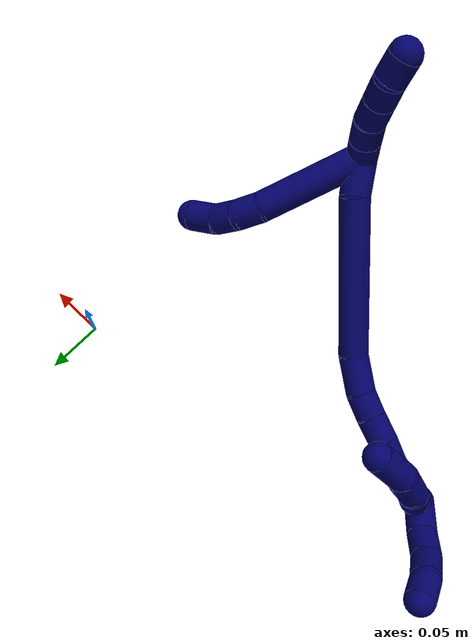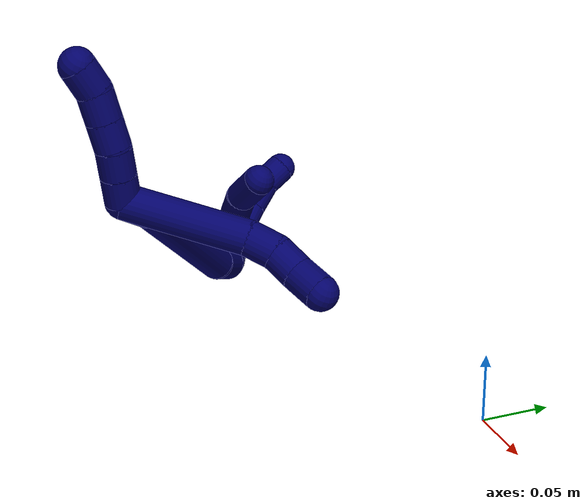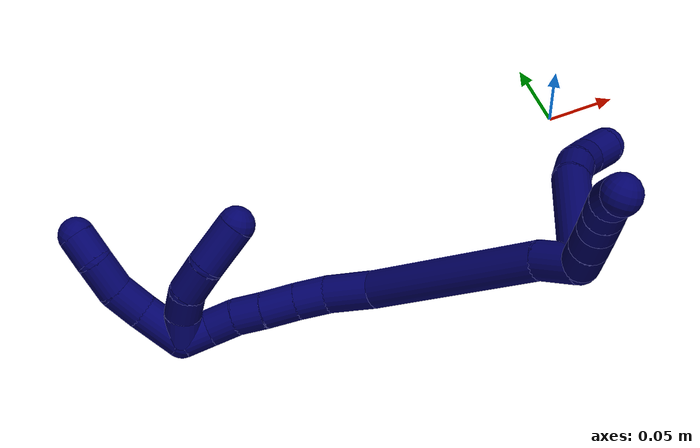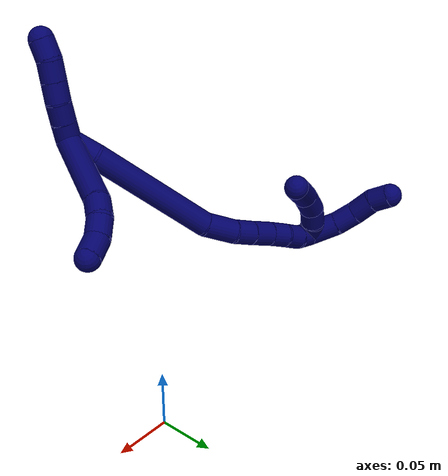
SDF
<sdf version="1.7">
 <world name="default">
  <model name="7">
   <static>0</static>
   <link name="7">
    <collision name="collision-cylinder-e_1_2_8">
     <pose>0.007698 0.041253 0.009433 -1.346 0.179933 -0.143574</pose>
     <geometry><cylinder><radius>0.0125</radius><length>0.086025</length></cylinder></geometry>
     <surface>
      <friction><ode><mu>1.16</mu><mu2>1.16</mu2><slip1>0</slip1><slip2>0</slip2></ode></friction>
      <contact><ode><kp>1e+06</kp><kd>1</kd><max_vel>0</max_vel><min_depth>0.001</min_depth></ode></contact>
     </surface>
    </collision>
    <visual name="visual-cylinder-e_1_2_8">
     <pose>0.007698 0.041253 0.009433 -1.346 0.179933 -0.143574</pose>
     <geometry><cylinder><radius>0.0125</radius><length>0.086025</length></cylinder></geometry>
     <material><ambient>0.003922 0 0.403922 1</ambient></material>
    </visual>
    <collision name="collision-cylinder-e_2_8_9">
     <pose>0.019554 0.09202 0.020574 -1.39313 0.406315 -0.341258</pose>
     <geometry><cylinder><radius>0.0125</radius><length>0.021045</length></cylinder></geometry>
     <surface>
      <friction><ode><mu>1.16</mu><mu2>1.16</mu2><slip1>0</slip1><slip2>0</slip2></ode></friction>
      <contact><ode><kp>1e+06</kp><kd>1</kd><max_vel>0</max_vel><min_depth>0.001</min_depth></ode></contact>
     </surface>
    </collision>
    <visual name="visual-cylinder-e_2_8_9">
     <pose>0.019554 0.09202 0.020574 -1.39313 0.406315 -0.341258</pose>
     <geometry><cylinder><radius>0.0125</radius><length>0.021045</length></cylinder></geometry>
     <material><ambient>0.003922 0 0.403922 1</ambient></material>
    </visual>
    <collision name="collision-cylinder-e_3_9_10">
     <pose>0.030014 0.109417 0.022232 -1.57725 0.674267 -0.678308</pose>
     <geometry><cylinder><radius>0.0125</radius><length>0.020185</length></cylinder></geometry>
     <surface>
      <friction><ode><mu>1.16</mu><mu2>1.16</mu2><slip1>0</slip1><slip2>0</slip2></ode></friction>
      <contact><ode><kp>1e+06</kp><kd>1</kd><max_vel>0</max_vel><min_depth>0.001</min_depth></ode></contact>
     </surface>
    </collision>
    <visual name="visual-cylinder-e_3_9_10">
     <pose>0.030014 0.109417 0.022232 -1.57725 0.674267 -0.678308</pose>
     <geometry><cylinder><radius>0.0125</radius><length>0.020185</length></cylinder></geometry>
     <material><ambient>0.003922 0 0.403922 1</ambient></material>
    </visual>
    <collision name="collision-cylinder-e_4_10_6">
     <pose>0.044924 0.124223 0.024881 -1.19894 0.858789 -0.606504</pose>
     <geometry><cylinder><radius>0.0125</radius><length>0.022746</length></cylinder></geometry>
     <surface>
      <friction><ode><mu>1.16</mu><mu2>1.16</mu2><slip1>0</slip1><slip2>0</slip2></ode></friction>
      <contact><ode><kp>1e+06</kp><kd>1</kd><max_vel>0</max_vel><min_depth>0.001</min_depth></ode></contact>
     </surface>
    </collision>
    <visual name="visual-cylinder-e_4_10_6">
     <pose>0.044924 0.124223 0.024881 -1.19894 0.858789 -0.606504</pose>
     <geometry><cylinder><radius>0.0125</radius><length>0.022746</length></cylinder></geometry>
     <material><ambient>0.003922 0 0.403922 1</ambient></material>
    </visual>
    <collision name="collision-cylinder-e_1_2_11">
     <pose>-0.00211 -0.005152 0.008307 0.555193 -0.212578 -0.060785</pose>
     <geometry><cylinder><radius>0.0125</radius><length>0.02</length></cylinder></geometry>
     <surface>
      <friction><ode><mu>1.16</mu><mu2>1.16</mu2><slip1>0</slip1><slip2>0</slip2></ode></friction>
      <contact><ode><kp>1e+06</kp><kd>1</kd><max_vel>0</max_vel><min_depth>0.001</min_depth></ode></contact>
     </surface>
    </collision>
    <visual name="visual-cylinder-e_1_2_11">
     <pose>-0.00211 -0.005152 0.008307 0.555193 -0.212578 -0.060785</pose>
     <geometry><cylinder><radius>0.0125</radius><length>0.02</length></cylinder></geometry>
     <material><ambient>0.003922 0 0.403922 1</ambient></material>
    </visual>
    <collision name="collision-cylinder-e_2_11_12">
     <pose>-0.006494 -0.015512 0.024842 0.564191 -0.229447 -0.066768</pose>
     <geometry><cylinder><radius>0.0125</radius><length>0.02</length></cylinder></geometry>
     <surface>
      <friction><ode><mu>1.16</mu><mu2>1.16</mu2><slip1>0</slip1><slip2>0</slip2></ode></friction>
      <contact><ode><kp>1e+06</kp><kd>1</kd><max_vel>0</max_vel><min_depth>0.001</min_depth></ode></contact>
     </surface>
    </collision>
    <visual name="visual-cylinder-e_2_11_12">
     <pose>-0.006494 -0.015512 0.024842 0.564191 -0.229447 -0.066768</pose>
     <geometry><cylinder><radius>0.0125</radius><length>0.02</length></cylinder></geometry>
     <material><ambient>0.003922 0 0.403922 1</ambient></material>
    </visual>
    <collision name="collision-cylinder-e_3_12_13">
     <pose>-0.011868 -0.026966 0.040238 0.716868 -0.315164 -0.118912</pose>
     <geometry><cylinder><radius>0.0125</radius><length>0.02</length></cylinder></geometry>
     <surface>
      <friction><ode><mu>1.16</mu><mu2>1.16</mu2><slip1>0</slip1><slip2>0</slip2></ode></friction>
      <contact><ode><kp>1e+06</kp><kd>1</kd><max_vel>0</max_vel><min_depth>0.001</min_depth></ode></contact>
     </surface>
    </collision>
    <visual name="visual-cylinder-e_3_12_13">
     <pose>-0.011868 -0.026966 0.040238 0.716868 -0.315164 -0.118912</pose>
     <geometry><cylinder><radius>0.0125</radius><length>0.02</length></cylinder></geometry>
     <material><ambient>0.003922 0 0.403922 1</ambient></material>
    </visual>
    <collision name="collision-cylinder-e_4_13_14">
     <pose>-0.018094 -0.039482 0.054541 0.720883 -0.317923 -0.1207</pose>
     <geometry><cylinder><radius>0.0125</radius><length>0.02</length></cylinder></geometry>
     <surface>
      <friction><ode><mu>1.16</mu><mu2>1.16</mu2><slip1>0</slip1><slip2>0</slip2></ode></friction>
      <contact><ode><kp>1e+06</kp><kd>1</kd><max_vel>0</max_vel><min_depth>0.001</min_depth></ode></contact>
     </surface>
    </collision>
    <visual name="visual-cylinder-e_4_13_14">
     <pose>-0.018094 -0.039482 0.054541 0.720883 -0.317923 -0.1207</pose>
     <geometry><cylinder><radius>0.0125</radius><length>0.02</length></cylinder></geometry>
     <material><ambient>0.003922 0 0.403922 1</ambient></material>
    </visual>
    <collision name="collision-cylinder-e_5_14_5">
     <pose>-0.023103 -0.053842 0.067246 0.967909 -0.189411 -0.099779</pose>
     <geometry><cylinder><radius>0.0125</radius><length>0.02</length></cylinder></geometry>
     <surface>
      <friction><ode><mu>1.16</mu><mu2>1.16</mu2><slip1>0</slip1><slip2>0</slip2></ode></friction>
      <contact><ode><kp>1e+06</kp><kd>1</kd><max_vel>0</max_vel><min_depth>0.001</min_depth></ode></contact>
     </surface>
    </collision>
    <visual name="visual-cylinder-e_5_14_5">
     <pose>-0.023103 -0.053842 0.067246 0.967909 -0.189411 -0.099779</pose>
     <geometry><cylinder><radius>0.0125</radius><length>0.02</length></cylinder></geometry>
     <material><ambient>0.003922 0 0.403922 1</ambient></material>
    </visual>
    <collision name="collision-cylinder-e_1_2_15">
     <pose>-0.006886 0.011283 -0.006262 -2.07746 -0.490219 0.803576</pose>
     <geometry><cylinder><radius>0.0125</radius><length>0.029253</length></cylinder></geometry>
     <surface>
      <friction><ode><mu>1.16</mu><mu2>1.16</mu2><slip1>0</slip1><slip2>0</slip2></ode></friction>
      <contact><ode><kp>1e+06</kp><kd>1</kd><max_vel>0</max_vel><min_depth>0.001</min_depth></ode></contact>
     </surface>
    </collision>
    <visual name="visual-cylinder-e_1_2_15">
     <pose>-0.006886 0.011283 -0.006262 -2.07746 -0.490219 0.803576</pose>
     <geometry><cylinder><radius>0.0125</radius><length>0.029253</length></cylinder></geometry>
     <material><ambient>0.003922 0 0.403922 1</ambient></material>
    </visual>
    <collision name="collision-cylinder-e_2_15_16">
     <pose>-0.043656 0.065274 -0.053055 -2.33005 -0.469644 1.01619</pose>
     <geometry><cylinder><radius>0.0125</radius><length>0.132058</length></cylinder></geometry>
     <surface>
      <friction><ode><mu>1.16</mu><mu2>1.16</mu2><slip1>0</slip1><slip2>0</slip2></ode></friction>
      <contact><ode><kp>1e+06</kp><kd>1</kd><max_vel>0</max_vel><min_depth>0.001</min_depth></ode></contact>
     </surface>
    </collision>
    <visual name="visual-cylinder-e_2_15_16">
     <pose>-0.043656 0.065274 -0.053055 -2.33005 -0.469644 1.01619</pose>
     <geometry><cylinder><radius>0.0125</radius><length>0.132058</length></cylinder></geometry>
     <material><ambient>0.003922 0 0.403922 1</ambient></material>
    </visual>
    <collision name="collision-cylinder-e_3_16_17">
     <pose>-0.084972 0.116163 -0.102435 -2.3954 -0.759164 1.58977</pose>
     <geometry><cylinder><radius>0.0125</radius><length>0.033221</length></cylinder></geometry>
     <surface>
      <friction><ode><mu>1.16</mu><mu2>1.16</mu2><slip1>0</slip1><slip2>0</slip2></ode></friction>
      <contact><ode><kp>1e+06</kp><kd>1</kd><max_vel>0</max_vel><min_depth>0.001</min_depth></ode></contact>
     </surface>
    </collision>
    <visual name="visual-cylinder-e_3_16_17">
     <pose>-0.084972 0.116163 -0.102435 -2.3954 -0.759164 1.58977</pose>
     <geometry><cylinder><radius>0.0125</radius><length>0.033221</length></cylinder></geometry>
     <material><ambient>0.003922 0 0.403922 1</ambient></material>
    </visual>
    <collision name="collision-cylinder-e_4_17_18">
     <pose>-0.10461 0.127617 -0.117472 -2.65512 -0.864291 2.15438</pose>
     <geometry><cylinder><radius>0.0125</radius><length>0.021573</length></cylinder></geometry>
     <surface>
      <friction><ode><mu>1.16</mu><mu2>1.16</mu2><slip1>0</slip1><slip2>0</slip2></ode></friction>
      <contact><ode><kp>1e+06</kp><kd>1</kd><max_vel>0</max_vel><min_depth>0.001</min_depth></ode></contact>
     </surface>
    </collision>
    <visual name="visual-cylinder-e_4_17_18">
     <pose>-0.10461 0.127617 -0.117472 -2.65512 -0.864291 2.15438</pose>
     <geometry><cylinder><radius>0.0125</radius><length>0.021573</length></cylinder></geometry>
     <material><ambient>0.003922 0 0.403922 1</ambient></material>
    </visual>
    <collision name="collision-cylinder-e_5_18_19">
     <pose>-0.121814 0.133878 -0.130703 -2.74024 -0.866382 2.31288</pose>
     <geometry><cylinder><radius>0.0125</radius><length>0.023622</length></cylinder></geometry>
     <surface>
      <friction><ode><mu>1.16</mu><mu2>1.16</mu2><slip1>0</slip1><slip2>0</slip2></ode></friction>
      <contact><ode><kp>1e+06</kp><kd>1</kd><max_vel>0</max_vel><min_depth>0.001</min_depth></ode></contact>
     </surface>
    </collision>
    <visual name="visual-cylinder-e_5_18_19">
     <pose>-0.121814 0.133878 -0.130703 -2.74024 -0.866382 2.31288</pose>
     <geometry><cylinder><radius>0.0125</radius><length>0.023622</length></cylinder></geometry>
     <material><ambient>0.003922 0 0.403922 1</ambient></material>
    </visual>
    <collision name="collision-cylinder-e_6_19_20">
     <pose>-0.138375 0.140062 -0.143623 -2.64371 -0.846334 2.11386</pose>
     <geometry><cylinder><radius>0.0125</radius><length>0.020194</length></cylinder></geometry>
     <surface>
      <friction><ode><mu>1.16</mu><mu2>1.16</mu2><slip1>0</slip1><slip2>0</slip2></ode></friction>
      <contact><ode><kp>1e+06</kp><kd>1</kd><max_vel>0</max_vel><min_depth>0.001</min_depth></ode></contact>
     </surface>
    </collision>
    <visual name="visual-cylinder-e_6_19_20">
     <pose>-0.138375 0.140062 -0.143623 -2.64371 -0.846334 2.11386</pose>
     <geometry><cylinder><radius>0.0125</radius><length>0.020194</length></cylinder></geometry>
     <material><ambient>0.003922 0 0.403922 1</ambient></material>
    </visual>
    <collision name="collision-cylinder-e_7_20_21">
     <pose>-0.152779 0.145435 -0.156503 -2.84006 -0.750994 2.40591</pose>
     <geometry><cylinder><radius>0.0125</radius><length>0.020057</length></cylinder></geometry>
     <surface>
      <friction><ode><mu>1.16</mu><mu2>1.16</mu2><slip1>0</slip1><slip2>0</slip2></ode></friction>
      <contact><ode><kp>1e+06</kp><kd>1</kd><max_vel>0</max_vel><min_depth>0.001</min_depth></ode></contact>
     </surface>
    </collision>
    <visual name="visual-cylinder-e_7_20_21">
     <pose>-0.152779 0.145435 -0.156503 -2.84006 -0.750994 2.40591</pose>
     <geometry><cylinder><radius>0.0125</radius><length>0.020057</length></cylinder></geometry>
     <material><ambient>0.003922 0 0.403922 1</ambient></material>
    </visual>
    <collision name="collision-cylinder-e_8_21_1">
     <pose>-0.167626 0.147389 -0.169512 3.10443 -0.926471 -3.06722</pose>
     <geometry><cylinder><radius>0.0125</radius><length>0.020022</length></cylinder></geometry>
     <surface>
      <friction><ode><mu>1.16</mu><mu2>1.16</mu2><slip1>0</slip1><slip2>0</slip2></ode></friction>
      <contact><ode><kp>1e+06</kp><kd>1</kd><max_vel>0</max_vel><min_depth>0.001</min_depth></ode></contact>
     </surface>
    </collision>
    <visual name="visual-cylinder-e_8_21_1">
     <pose>-0.167626 0.147389 -0.169512 3.10443 -0.926471 -3.06722</pose>
     <geometry><cylinder><radius>0.0125</radius><length>0.020022</length></cylinder></geometry>
     <material><ambient>0.003922 0 0.403922 1</ambient></material>
    </visual>
    <collision name="collision-cylinder-e_1_1_22">
     <pose>-0.189799 0.153031 -0.170771 -0.890149 -1.08131 0.557771</pose>
     <geometry><cylinder><radius>0.0125</radius><length>0.032109</length></cylinder></geometry>
     <surface>
      <friction><ode><mu>1.16</mu><mu2>1.16</mu2><slip1>0</slip1><slip2>0</slip2></ode></friction>
      <contact><ode><kp>1e+06</kp><kd>1</kd><max_vel>0</max_vel><min_depth>0.001</min_depth></ode></contact>
     </surface>
    </collision>
    <visual name="visual-cylinder-e_1_1_22">
     <pose>-0.189799 0.153031 -0.170771 -0.890149 -1.08131 0.557771</pose>
     <geometry><cylinder><radius>0.0125</radius><length>0.032109</length></cylinder></geometry>
     <material><ambient>0.003922 0 0.403922 1</ambient></material>
    </visual>
    <collision name="collision-cylinder-e_2_22_23">
     <pose>-0.21423 0.16162 -0.161338 -0.526619 -1.08518 0.322256</pose>
     <geometry><cylinder><radius>0.0125</radius><length>0.023207</length></cylinder></geometry>
     <surface>
      <friction><ode><mu>1.16</mu><mu2>1.16</mu2><slip1>0</slip1><slip2>0</slip2></ode></friction>
      <contact><ode><kp>1e+06</kp><kd>1</kd><max_vel>0</max_vel><min_depth>0.001</min_depth></ode></contact>
     </surface>
    </collision>
    <visual name="visual-cylinder-e_2_22_23">
     <pose>-0.21423 0.16162 -0.161338 -0.526619 -1.08518 0.322256</pose>
     <geometry><cylinder><radius>0.0125</radius><length>0.023207</length></cylinder></geometry>
     <material><ambient>0.003922 0 0.403922 1</ambient></material>
    </visual>
    <collision name="collision-cylinder-e_3_23_24">
     <pose>-0.233368 0.167159 -0.148892 -0.348059 -0.821354 0.152808</pose>
     <geometry><cylinder><radius>0.0125</radius><length>0.02425</length></cylinder></geometry>
     <surface>
      <friction><ode><mu>1.16</mu><mu2>1.16</mu2><slip1>0</slip1><slip2>0</slip2></ode></friction>
      <contact><ode><kp>1e+06</kp><kd>1</kd><max_vel>0</max_vel><min_depth>0.001</min_depth></ode></contact>
     </surface>
    </collision>
    <visual name="visual-cylinder-e_3_23_24">
     <pose>-0.233368 0.167159 -0.148892 -0.348059 -0.821354 0.152808</pose>
     <geometry><cylinder><radius>0.0125</radius><length>0.02425</length></cylinder></geometry>
     <material><ambient>0.003922 0 0.403922 1</ambient></material>
    </visual>
    <collision name="collision-cylinder-e_4_24_4">
     <pose>-0.249186 0.17523 -0.135778 -0.776428 -0.746939 0.317815</pose>
     <geometry><cylinder><radius>0.0125</radius><length>0.020435</length></cylinder></geometry>
     <surface>
      <friction><ode><mu>1.16</mu><mu2>1.16</mu2><slip1>0</slip1><slip2>0</slip2></ode></friction>
      <contact><ode><kp>1e+06</kp><kd>1</kd><max_vel>0</max_vel><min_depth>0.001</min_depth></ode></contact>
     </surface>
    </collision>
    <visual name="visual-cylinder-e_4_24_4">
     <pose>-0.249186 0.17523 -0.135778 -0.776428 -0.746939 0.317815</pose>
     <geometry><cylinder><radius>0.0125</radius><length>0.020435</length></cylinder></geometry>
     <material><ambient>0.003922 0 0.403922 1</ambient></material>
    </visual>
    <collision name="collision-cylinder-e_1_1_25">
     <pose>-0.178241 0.146773 -0.165795 0.040334 -0.262027 -0.005315</pose>
     <geometry><cylinder><radius>0.0125</radius><length>0.020156</length></cylinder></geometry>
     <surface>
      <friction><ode><mu>1.16</mu><mu2>1.16</mu2><slip1>0</slip1><slip2>0</slip2></ode></friction>
      <contact><ode><kp>1e+06</kp><kd>1</kd><max_vel>0</max_vel><min_depth>0.001</min_depth></ode></contact>
     </surface>
    </collision>
    <visual name="visual-cylinder-e_1_1_25">
     <pose>-0.178241 0.146773 -0.165795 0.040334 -0.262027 -0.005315</pose>
     <geometry><cylinder><radius>0.0125</radius><length>0.020156</length></cylinder></geometry>
     <material><ambient>0.003922 0 0.403922 1</ambient></material>
    </visual>
    <collision name="collision-cylinder-e_2_25_26">
     <pose>-0.182383 0.143526 -0.146233 0.28244 -0.148442 -0.021142</pose>
     <geometry><cylinder><radius>0.0125</radius><length>0.02071</length></cylinder></geometry>
     <surface>
      <friction><ode><mu>1.16</mu><mu2>1.16</mu2><slip1>0</slip1><slip2>0</slip2></ode></friction>
      <contact><ode><kp>1e+06</kp><kd>1</kd><max_vel>0</max_vel><min_depth>0.001</min_depth></ode></contact>
     </surface>
    </collision>
    <visual name="visual-cylinder-e_2_25_26">
     <pose>-0.182383 0.143526 -0.146233 0.28244 -0.148442 -0.021142</pose>
     <geometry><cylinder><radius>0.0125</radius><length>0.02071</length></cylinder></geometry>
     <material><ambient>0.003922 0 0.403922 1</ambient></material>
    </visual>
    <collision name="collision-cylinder-e_3_26_27">
     <pose>-0.181452 0.137898 -0.124257 0.224623 0.195174 0.022082</pose>
     <geometry><cylinder><radius>0.0125</radius><length>0.025388</length></cylinder></geometry>
     <surface>
      <friction><ode><mu>1.16</mu><mu2>1.16</mu2><slip1>0</slip1><slip2>0</slip2></ode></friction>
      <contact><ode><kp>1e+06</kp><kd>1</kd><max_vel>0</max_vel><min_depth>0.001</min_depth></ode></contact>
     </surface>
    </collision>
    <visual name="visual-cylinder-e_3_26_27">
     <pose>-0.181452 0.137898 -0.124257 0.224623 0.195174 0.022082</pose>
     <geometry><cylinder><radius>0.0125</radius><length>0.025388</length></cylinder></geometry>
     <material><ambient>0.003922 0 0.403922 1</ambient></material>
    </visual>
    <collision name="collision-cylinder-e_4_27_3">
     <pose>-0.173292 0.135634 -0.096244 -0.032102 0.344531 -0.005586</pose>
     <geometry><cylinder><radius>0.0125</radius><length>0.033746</length></cylinder></geometry>
     <surface>
      <friction><ode><mu>1.16</mu><mu2>1.16</mu2><slip1>0</slip1><slip2>0</slip2></ode></friction>
      <contact><ode><kp>1e+06</kp><kd>1</kd><max_vel>0</max_vel><min_depth>0.001</min_depth></ode></contact>
     </surface>
    </collision>
    <visual name="visual-cylinder-e_4_27_3">
     <pose>-0.173292 0.135634 -0.096244 -0.032102 0.344531 -0.005586</pose>
     <geometry><cylinder><radius>0.0125</radius><length>0.033746</length></cylinder></geometry>
     <material><ambient>0.003922 0 0.403922 1</ambient></material>
    </visual>
    <collision name="collision-sphere-3">
     <pose>-0.167593 0.136144 -0.080371 0 -0 0</pose>
     <geometry><sphere><radius>0.0125</radius></sphere></geometry>
     <surface>
      <friction><ode><mu>1.16</mu><mu2>1.16</mu2><slip1>0</slip1><slip2>0</slip2></ode></friction>
      <contact><ode><kp>1e+06</kp><kd>1</kd><max_vel>0</max_vel><min_depth>0.001</min_depth></ode></contact>
     </surface>
    </collision>
    <visual name="visual-sphere-3">
     <pose>-0.167593 0.136144 -0.080371 0 -0 0</pose>
     <geometry><sphere><radius>0.0125</radius></sphere></geometry>
     <material><ambient>0.003922 0 0.403922 1</ambient></material>
    </visual>
    <collision name="collision-sphere-27">
     <pose>-0.178991 0.135124 -0.112117 0 -0 0</pose>
     <geometry><sphere><radius>0.0125</radius></sphere></geometry>
     <surface>
      <friction><ode><mu>1.16</mu><mu2>1.16</mu2><slip1>0</slip1><slip2>0</slip2></ode></friction>
      <contact><ode><kp>1e+06</kp><kd>1</kd><max_vel>0</max_vel><min_depth>0.001</min_depth></ode></contact>
     </surface>
    </collision>
    <visual name="visual-sphere-27">
     <pose>-0.178991 0.135124 -0.112117 0 -0 0</pose>
     <geometry><sphere><radius>0.0125</radius></sphere></geometry>
     <material><ambient>0.003922 0 0.403922 1</ambient></material>
    </visual>
    <collision name="collision-sphere-26">
     <pose>-0.183914 0.140672 -0.136397 0 -0 0</pose>
     <geometry><sphere><radius>0.0125</radius></sphere></geometry>
     <surface>
      <friction><ode><mu>1.16</mu><mu2>1.16</mu2><slip1>0</slip1><slip2>0</slip2></ode></friction>
      <contact><ode><kp>1e+06</kp><kd>1</kd><max_vel>0</max_vel><min_depth>0.001</min_depth></ode></contact>
     </surface>
    </collision>
    <visual name="visual-sphere-26">
     <pose>-0.183914 0.140672 -0.136397 0 -0 0</pose>
     <geometry><sphere><radius>0.0125</radius></sphere></geometry>
     <material><ambient>0.003922 0 0.403922 1</ambient></material>
    </visual>
    <collision name="collision-sphere-25">
     <pose>-0.180851 0.14638 -0.156068 0 -0 0</pose>
     <geometry><sphere><radius>0.0125</radius></sphere></geometry>
     <surface>
      <friction><ode><mu>1.16</mu><mu2>1.16</mu2><slip1>0</slip1><slip2>0</slip2></ode></friction>
      <contact><ode><kp>1e+06</kp><kd>1</kd><max_vel>0</max_vel><min_depth>0.001</min_depth></ode></contact>
     </surface>
    </collision>
    <visual name="visual-sphere-25">
     <pose>-0.180851 0.14638 -0.156068 0 -0 0</pose>
     <geometry><sphere><radius>0.0125</radius></sphere></geometry>
     <material><ambient>0.003922 0 0.403922 1</ambient></material>
    </visual>
    <collision name="collision-sphere-4">
     <pose>-0.256128 0.180484 -0.13043 0 -0 0</pose>
     <geometry><sphere><radius>0.0125</radius></sphere></geometry>
     <surface>
      <friction><ode><mu>1.16</mu><mu2>1.16</mu2><slip1>0</slip1><slip2>0</slip2></ode></friction>
      <contact><ode><kp>1e+06</kp><kd>1</kd><max_vel>0</max_vel><min_depth>0.001</min_depth></ode></contact>
     </surface>
    </collision>
    <visual name="visual-sphere-4">
     <pose>-0.256128 0.180484 -0.13043 0 -0 0</pose>
     <geometry><sphere><radius>0.0125</radius></sphere></geometry>
     <material><ambient>0.003922 0 0.403922 1</ambient></material>
    </visual>
    <collision name="collision-sphere-24">
     <pose>-0.242244 0.169976 -0.141127 0 -0 0</pose>
     <geometry><sphere><radius>0.0125</radius></sphere></geometry>
     <surface>
      <friction><ode><mu>1.16</mu><mu2>1.16</mu2><slip1>0</slip1><slip2>0</slip2></ode></friction>
      <contact><ode><kp>1e+06</kp><kd>1</kd><max_vel>0</max_vel><min_depth>0.001</min_depth></ode></contact>
     </surface>
    </collision>
    <visual name="visual-sphere-24">
     <pose>-0.242244 0.169976 -0.141127 0 -0 0</pose>
     <geometry><sphere><radius>0.0125</radius></sphere></geometry>
     <material><ambient>0.003922 0 0.403922 1</ambient></material>
    </visual>
    <collision name="collision-sphere-23">
     <pose>-0.224492 0.164342 -0.156656 0 -0 0</pose>
     <geometry><sphere><radius>0.0125</radius></sphere></geometry>
     <surface>
      <friction><ode><mu>1.16</mu><mu2>1.16</mu2><slip1>0</slip1><slip2>0</slip2></ode></friction>
      <contact><ode><kp>1e+06</kp><kd>1</kd><max_vel>0</max_vel><min_depth>0.001</min_depth></ode></contact>
     </surface>
    </collision>
    <visual name="visual-sphere-23">
     <pose>-0.224492 0.164342 -0.156656 0 -0 0</pose>
     <geometry><sphere><radius>0.0125</radius></sphere></geometry>
     <material><ambient>0.003922 0 0.403922 1</ambient></material>
    </visual>
    <collision name="collision-sphere-22">
     <pose>-0.203968 0.158898 -0.16602 0 -0 0</pose>
     <geometry><sphere><radius>0.0125</radius></sphere></geometry>
     <surface>
      <friction><ode><mu>1.16</mu><mu2>1.16</mu2><slip1>0</slip1><slip2>0</slip2></ode></friction>
      <contact><ode><kp>1e+06</kp><kd>1</kd><max_vel>0</max_vel><min_depth>0.001</min_depth></ode></contact>
     </surface>
    </collision>
    <visual name="visual-sphere-22">
     <pose>-0.203968 0.158898 -0.16602 0 -0 0</pose>
     <geometry><sphere><radius>0.0125</radius></sphere></geometry>
     <material><ambient>0.003922 0 0.403922 1</ambient></material>
    </visual>
    <collision name="collision-sphere-1">
     <pose>-0.17563 0.147165 -0.175521 0 -0 0</pose>
     <geometry><sphere><radius>0.0125</radius></sphere></geometry>
     <surface>
      <friction><ode><mu>1.16</mu><mu2>1.16</mu2><slip1>0</slip1><slip2>0</slip2></ode></friction>
      <contact><ode><kp>1e+06</kp><kd>1</kd><max_vel>0</max_vel><min_depth>0.001</min_depth></ode></contact>
     </surface>
    </collision>
    <visual name="visual-sphere-1">
     <pose>-0.17563 0.147165 -0.175521 0 -0 0</pose>
     <geometry><sphere><radius>0.0125</radius></sphere></geometry>
     <material><ambient>0.003922 0 0.403922 1</ambient></material>
    </visual>
    <collision name="collision-sphere-21">
     <pose>-0.159622 0.147612 -0.163503 0 -0 0</pose>
     <geometry><sphere><radius>0.0125</radius></sphere></geometry>
     <surface>
      <friction><ode><mu>1.16</mu><mu2>1.16</mu2><slip1>0</slip1><slip2>0</slip2></ode></friction>
      <contact><ode><kp>1e+06</kp><kd>1</kd><max_vel>0</max_vel><min_depth>0.001</min_depth></ode></contact>
     </surface>
    </collision>
    <visual name="visual-sphere-21">
     <pose>-0.159622 0.147612 -0.163503 0 -0 0</pose>
     <geometry><sphere><radius>0.0125</radius></sphere></geometry>
     <material><ambient>0.003922 0 0.403922 1</ambient></material>
    </visual>
    <collision name="collision-sphere-11">
     <pose>-0.00422 -0.010305 0.016613 0 -0 0</pose>
     <geometry><sphere><radius>0.0125</radius></sphere></geometry>
     <surface>
      <friction><ode><mu>1.16</mu><mu2>1.16</mu2><slip1>0</slip1><slip2>0</slip2></ode></friction>
      <contact><ode><kp>1e+06</kp><kd>1</kd><max_vel>0</max_vel><min_depth>0.001</min_depth></ode></contact>
     </surface>
    </collision>
    <visual name="visual-sphere-11">
     <pose>-0.00422 -0.010305 0.016613 0 -0 0</pose>
     <geometry><sphere><radius>0.0125</radius></sphere></geometry>
     <material><ambient>0.003922 0 0.403922 1</ambient></material>
    </visual>
    <collision name="collision-sphere-6">
     <pose>0.053534 0.131146 0.027581 0 -0 0</pose>
     <geometry><sphere><radius>0.0125</radius></sphere></geometry>
     <surface>
      <friction><ode><mu>1.16</mu><mu2>1.16</mu2><slip1>0</slip1><slip2>0</slip2></ode></friction>
      <contact><ode><kp>1e+06</kp><kd>1</kd><max_vel>0</max_vel><min_depth>0.001</min_depth></ode></contact>
     </surface>
    </collision>
    <visual name="visual-sphere-6">
     <pose>0.053534 0.131146 0.027581 0 -0 0</pose>
     <geometry><sphere><radius>0.0125</radius></sphere></geometry>
     <material><ambient>0.003922 0 0.403922 1</ambient></material>
    </visual>
    <collision name="collision-sphere-10">
     <pose>0.036314 0.117301 0.022181 0 -0 0</pose>
     <geometry><sphere><radius>0.0125</radius></sphere></geometry>
     <surface>
      <friction><ode><mu>1.16</mu><mu2>1.16</mu2><slip1>0</slip1><slip2>0</slip2></ode></friction>
      <contact><ode><kp>1e+06</kp><kd>1</kd><max_vel>0</max_vel><min_depth>0.001</min_depth></ode></contact>
     </surface>
    </collision>
    <visual name="visual-sphere-10">
     <pose>0.036314 0.117301 0.022181 0 -0 0</pose>
     <geometry><sphere><radius>0.0125</radius></sphere></geometry>
     <material><ambient>0.003922 0 0.403922 1</ambient></material>
    </visual>
    <collision name="collision-sphere-9">
     <pose>0.023713 0.101533 0.022283 0 -0 0</pose>
     <geometry><sphere><radius>0.0125</radius></sphere></geometry>
     <surface>
      <friction><ode><mu>1.16</mu><mu2>1.16</mu2><slip1>0</slip1><slip2>0</slip2></ode></friction>
      <contact><ode><kp>1e+06</kp><kd>1</kd><max_vel>0</max_vel><min_depth>0.001</min_depth></ode></contact>
     </surface>
    </collision>
    <visual name="visual-sphere-9">
     <pose>0.023713 0.101533 0.022283 0 -0 0</pose>
     <geometry><sphere><radius>0.0125</radius></sphere></geometry>
     <material><ambient>0.003922 0 0.403922 1</ambient></material>
    </visual>
    <collision name="collision-sphere-2">
     <geometry><sphere><radius>0.0125</radius></sphere></geometry>
     <surface>
      <friction><ode><mu>1.16</mu><mu2>1.16</mu2><slip1>0</slip1><slip2>0</slip2></ode></friction>
      <contact><ode><kp>1e+06</kp><kd>1</kd><max_vel>0</max_vel><min_depth>0.001</min_depth></ode></contact>
     </surface>
    </collision>
    <visual name="visual-sphere-2">
     <geometry><sphere><radius>0.0125</radius></sphere></geometry>
     <material><ambient>0.003922 0 0.403922 1</ambient></material>
    </visual>
    <collision name="collision-sphere-19">
     <pose>-0.130814 0.136866 -0.137744 0 -0 0</pose>
     <geometry><sphere><radius>0.0125</radius></sphere></geometry>
     <surface>
      <friction><ode><mu>1.16</mu><mu2>1.16</mu2><slip1>0</slip1><slip2>0</slip2></ode></friction>
      <contact><ode><kp>1e+06</kp><kd>1</kd><max_vel>0</max_vel><min_depth>0.001</min_depth></ode></contact>
     </surface>
    </collision>
    <visual name="visual-sphere-19">
     <pose>-0.130814 0.136866 -0.137744 0 -0 0</pose>
     <geometry><sphere><radius>0.0125</radius></sphere></geometry>
     <material><ambient>0.003922 0 0.403922 1</ambient></material>
    </visual>
    <collision name="collision-sphere-8">
     <pose>0.015395 0.082507 0.018866 0 -0 0</pose>
     <geometry><sphere><radius>0.0125</radius></sphere></geometry>
     <surface>
      <friction><ode><mu>1.16</mu><mu2>1.16</mu2><slip1>0</slip1><slip2>0</slip2></ode></friction>
      <contact><ode><kp>1e+06</kp><kd>1</kd><max_vel>0</max_vel><min_depth>0.001</min_depth></ode></contact>
     </surface>
    </collision>
    <visual name="visual-sphere-8">
     <pose>0.015395 0.082507 0.018866 0 -0 0</pose>
     <geometry><sphere><radius>0.0125</radius></sphere></geometry>
     <material><ambient>0.003922 0 0.403922 1</ambient></material>
    </visual>
    <collision name="collision-sphere-12">
     <pose>-0.008768 -0.020719 0.033071 0 -0 0</pose>
     <geometry><sphere><radius>0.0125</radius></sphere></geometry>
     <surface>
      <friction><ode><mu>1.16</mu><mu2>1.16</mu2><slip1>0</slip1><slip2>0</slip2></ode></friction>
      <contact><ode><kp>1e+06</kp><kd>1</kd><max_vel>0</max_vel><min_depth>0.001</min_depth></ode></contact>
     </surface>
    </collision>
    <visual name="visual-sphere-12">
     <pose>-0.008768 -0.020719 0.033071 0 -0 0</pose>
     <geometry><sphere><radius>0.0125</radius></sphere></geometry>
     <material><ambient>0.003922 0 0.403922 1</ambient></material>
    </visual>
    <collision name="collision-sphere-13">
     <pose>-0.014968 -0.033213 0.047406 0 -0 0</pose>
     <geometry><sphere><radius>0.0125</radius></sphere></geometry>
     <surface>
      <friction><ode><mu>1.16</mu><mu2>1.16</mu2><slip1>0</slip1><slip2>0</slip2></ode></friction>
      <contact><ode><kp>1e+06</kp><kd>1</kd><max_vel>0</max_vel><min_depth>0.001</min_depth></ode></contact>
     </surface>
    </collision>
    <visual name="visual-sphere-13">
     <pose>-0.014968 -0.033213 0.047406 0 -0 0</pose>
     <geometry><sphere><radius>0.0125</radius></sphere></geometry>
     <material><ambient>0.003922 0 0.403922 1</ambient></material>
    </visual>
    <collision name="collision-sphere-14">
     <pose>-0.02122 -0.045752 0.061677 0 -0 0</pose>
     <geometry><sphere><radius>0.0125</radius></sphere></geometry>
     <surface>
      <friction><ode><mu>1.16</mu><mu2>1.16</mu2><slip1>0</slip1><slip2>0</slip2></ode></friction>
      <contact><ode><kp>1e+06</kp><kd>1</kd><max_vel>0</max_vel><min_depth>0.001</min_depth></ode></contact>
     </surface>
    </collision>
    <visual name="visual-sphere-14">
     <pose>-0.02122 -0.045752 0.061677 0 -0 0</pose>
     <geometry><sphere><radius>0.0125</radius></sphere></geometry>
     <material><ambient>0.003922 0 0.403922 1</ambient></material>
    </visual>
    <collision name="collision-sphere-5">
     <pose>-0.024985 -0.061931 0.072815 0 -0 0</pose>
     <geometry><sphere><radius>0.0125</radius></sphere></geometry>
     <surface>
      <friction><ode><mu>1.16</mu><mu2>1.16</mu2><slip1>0</slip1><slip2>0</slip2></ode></friction>
      <contact><ode><kp>1e+06</kp><kd>1</kd><max_vel>0</max_vel><min_depth>0.001</min_depth></ode></contact>
     </surface>
    </collision>
    <visual name="visual-sphere-5">
     <pose>-0.024985 -0.061931 0.072815 0 -0 0</pose>
     <geometry><sphere><radius>0.0125</radius></sphere></geometry>
     <material><ambient>0.003922 0 0.403922 1</ambient></material>
    </visual>
    <collision name="collision-sphere-15">
     <pose>-0.013773 0.022566 -0.012524 0 -0 0</pose>
     <geometry><sphere><radius>0.0125</radius></sphere></geometry>
     <surface>
      <friction><ode><mu>1.16</mu><mu2>1.16</mu2><slip1>0</slip1><slip2>0</slip2></ode></friction>
      <contact><ode><kp>1e+06</kp><kd>1</kd><max_vel>0</max_vel><min_depth>0.001</min_depth></ode></contact>
     </surface>
    </collision>
    <visual name="visual-sphere-15">
     <pose>-0.013773 0.022566 -0.012524 0 -0 0</pose>
     <geometry><sphere><radius>0.0125</radius></sphere></geometry>
     <material><ambient>0.003922 0 0.403922 1</ambient></material>
    </visual>
    <collision name="collision-sphere-16">
     <pose>-0.073538 0.107983 -0.093587 0 -0 0</pose>
     <geometry><sphere><radius>0.0125</radius></sphere></geometry>
     <surface>
      <friction><ode><mu>1.16</mu><mu2>1.16</mu2><slip1>0</slip1><slip2>0</slip2></ode></friction>
      <contact><ode><kp>1e+06</kp><kd>1</kd><max_vel>0</max_vel><min_depth>0.001</min_depth></ode></contact>
     </surface>
    </collision>
    <visual name="visual-sphere-16">
     <pose>-0.073538 0.107983 -0.093587 0 -0 0</pose>
     <geometry><sphere><radius>0.0125</radius></sphere></geometry>
     <material><ambient>0.003922 0 0.403922 1</ambient></material>
    </visual>
    <collision name="collision-sphere-17">
     <pose>-0.096405 0.124343 -0.111282 0 -0 0</pose>
     <geometry><sphere><radius>0.0125</radius></sphere></geometry>
     <surface>
      <friction><ode><mu>1.16</mu><mu2>1.16</mu2><slip1>0</slip1><slip2>0</slip2></ode></friction>
      <contact><ode><kp>1e+06</kp><kd>1</kd><max_vel>0</max_vel><min_depth>0.001</min_depth></ode></contact>
     </surface>
    </collision>
    <visual name="visual-sphere-17">
     <pose>-0.096405 0.124343 -0.111282 0 -0 0</pose>
     <geometry><sphere><radius>0.0125</radius></sphere></geometry>
     <material><ambient>0.003922 0 0.403922 1</ambient></material>
    </visual>
    <collision name="collision-sphere-18">
     <pose>-0.112814 0.13089 -0.123662 0 -0 0</pose>
     <geometry><sphere><radius>0.0125</radius></sphere></geometry>
     <surface>
      <friction><ode><mu>1.16</mu><mu2>1.16</mu2><slip1>0</slip1><slip2>0</slip2></ode></friction>
      <contact><ode><kp>1e+06</kp><kd>1</kd><max_vel>0</max_vel><min_depth>0.001</min_depth></ode></contact>
     </surface>
    </collision>
    <visual name="visual-sphere-18">
     <pose>-0.112814 0.13089 -0.123662 0 -0 0</pose>
     <geometry><sphere><radius>0.0125</radius></sphere></geometry>
     <material><ambient>0.003922 0 0.403922 1</ambient></material>
    </visual>
    <collision name="collision-sphere-20">
     <pose>-0.145936 0.143258 -0.149503 0 -0 0</pose>
     <geometry><sphere><radius>0.0125</radius></sphere></geometry>
     <surface>
      <friction><ode><mu>1.16</mu><mu2>1.16</mu2><slip1>0</slip1><slip2>0</slip2></ode></friction>
      <contact><ode><kp>1e+06</kp><kd>1</kd><max_vel>0</max_vel><min_depth>0.001</min_depth></ode></contact>
     </surface>
    </collision>
    <visual name="visual-sphere-20">
     <pose>-0.145936 0.143258 -0.149503 0 -0 0</pose>
     <geometry><sphere><radius>0.0125</radius></sphere></geometry>
     <material><ambient>0.003922 0 0.403922 1</ambient></material>
    </visual>
    <inertial>
     <pose>-0.081749 0.087239 -0.063827 0 -0 0</pose>
     <mass>0.75</mass>
     <inertia>
      <ixx>0.000303</ixx>
      <ixy>0</ixy>
      <ixz>0</ixz>
      <iyy>0.000201</iyy>
      <iyz>0</iyz>
      <izz>-8.9e-05</izz>
     </inertia>
    </inertial>
   </link>
   <pose>-0.105003 -0.21973 0.155912 -0.462129 0.372126 -0.351361</pose>
  </model>
 </world>
</sdf>
